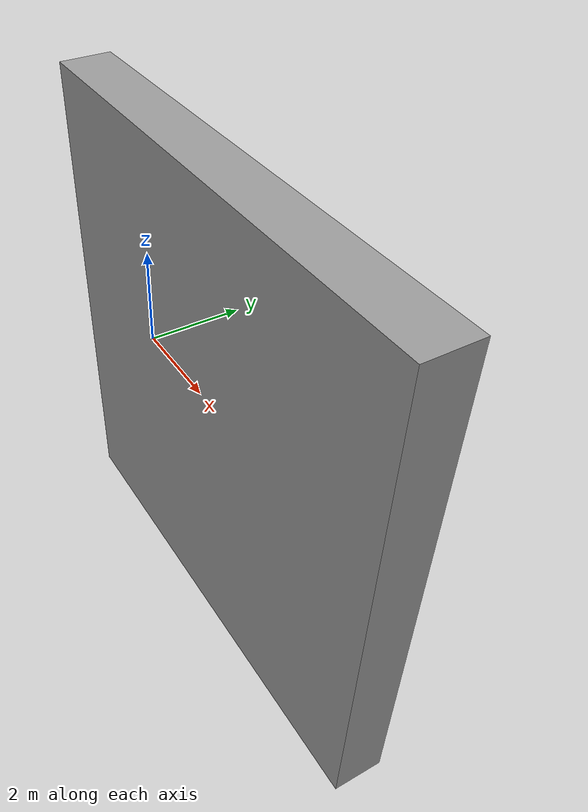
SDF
<?xml version='1.0'?>
<sdf version='1.7'>
  <model name='Wall'>
    <link name='link'>
      <inertial>
        <mass>1</mass>
        <inertia>
          <ixx>0.166667</ixx>
          <ixy>0</ixy>
          <ixz>0</ixz>
          <iyy>0.166667</iyy>
          <iyz>0</iyz>
          <izz>0.166667</izz>
        </inertia>
        <pose>0 0 0 0 -0 0</pose>
      </inertial>
      <self_collide>0</self_collide>
      <enable_wind>0</enable_wind>
      <kinematic>0</kinematic>
      <pose>2.87093 -0 -0 0 -0 0</pose>
      <gravity>1</gravity>
      <visual name='visual'>
        <geometry>
          <box>
            <size>10 1 10</size>
          </box>
        </geometry>
        <material>
          <script>
            <name>Gazebo/Grey</name>
            <uri>file://media/materials/scripts/gazebo.material</uri>
          </script>
          <shader type='pixel'>
            <normal_map>__default__</normal_map>
          </shader>
          <ambient>0.3 0.3 0.3 1</ambient>
          <diffuse>0.7 0.7 0.7 1</diffuse>
          <specular>0.01 0.01 0.01 1</specular>
          <emissive>0 0 0 1</emissive>
        </material>
        <pose>0 0 0 0 -0 0</pose>
        <transparency>0</transparency>
        <cast_shadows>1</cast_shadows>
      </visual>
      <collision name='collision'>
        <laser_retro>0</laser_retro>
        <max_contacts>10</max_contacts>
        <pose>0 0 0 0 -0 0</pose>
        <geometry>
          <box>
            <size>10 1 10</size>
          </box>
        </geometry>
        <surface>
          <friction>
            <ode>
              <mu>1</mu>
              <mu2>1</mu2>
              <fdir1>0 0 0</fdir1>
              <slip1>0</slip1>
              <slip2>0</slip2>
            </ode>
            <torsional>
              <coefficient>1</coefficient>
              <patch_radius>0</patch_radius>
              <surface_radius>0</surface_radius>
              <use_patch_radius>1</use_patch_radius>
              <ode>
                <slip>0</slip>
              </ode>
            </torsional>
          </friction>
          <bounce>
            <restitution_coefficient>0</restitution_coefficient>
            <threshold>1e+06</threshold>
          </bounce>
          <contact>
            <collide_without_contact>0</collide_without_contact>
            <collide_without_contact_bitmask>1</collide_without_contact_bitmask>
            <collide_bitmask>1</collide_bitmask>
            <ode>
              <soft_cfm>0</soft_cfm>
              <soft_erp>0.2</soft_erp>
              <kp>1e+13</kp>
              <kd>1</kd>
              <max_vel>0.01</max_vel>
              <min_depth>0</min_depth>
            </ode>
            <bullet>
              <split_impulse>1</split_impulse>
              <split_impulse_penetration_threshold>-0.01</split_impulse_penetration_threshold>
              <soft_cfm>0</soft_cfm>
              <soft_erp>0.2</soft_erp>
              <kp>1e+13</kp>
              <kd>1</kd>
            </bullet>
          </contact>
        </surface>
      </collision>
    </link>
    <static>1</static>
    <allow_auto_disable>1</allow_auto_disable>
  </model>

  <model name='wall_sonar'>
      <pose>-0.75 -0.5 1.0 0 0 0</pose>
      <link name='sonar_link'>
        <inertial>
          <mass>0.1</mass>
        </inertial>
        <collision name='collision'>
          <geometry>
            <box>
              <size>0.073 0.276 0.072</size>
            </box>
          </geometry>
        </collision>
      <sensor type="ray" name="sonar">
        <pose>0 0 0 0 0 0</pose>
        <update_rate>5</update_rate>
        <visualize>true</visualize>
        <ray>
          <scan>
            <horizontal>
              <samples>5</samples>
              <min_angle>-.1</min_angle>
              <max_angle>.1</max_angle>
            </horizontal>
            <vertical>
              <samples>10</samples>
              <resolution>0.1</resolution>
              <min_angle>-.01</min_angle>
              <max_angle>.1</max_angle>
            </vertical>
          </scan>
          <range>
            <min>0.51</min>
            <max>5.00</max>
            <resolution>0.01</resolution>
          </range>
        </ray>
        <plugin filename="libgazebo_ros_range.so" name="gazebo_ros_range">
          <gaussianNoise>0.005</gaussianNoise>
          <alwaysOn>true</alwaysOn>
          <updateRate>5</updateRate>
          <topicName>wall_sonar</topicName>
          <frameName>sonar_link</frameName>
          <fov>0.5</fov>
          <radiation>ultrasound</radiation>
        </plugin>
      </sensor>
      <gravity>false</gravity>
      <self_collide>false</self_collide>
      <kinematic>false</kinematic>
    </link>
    <static>false</static>
  </model>

</sdf>
